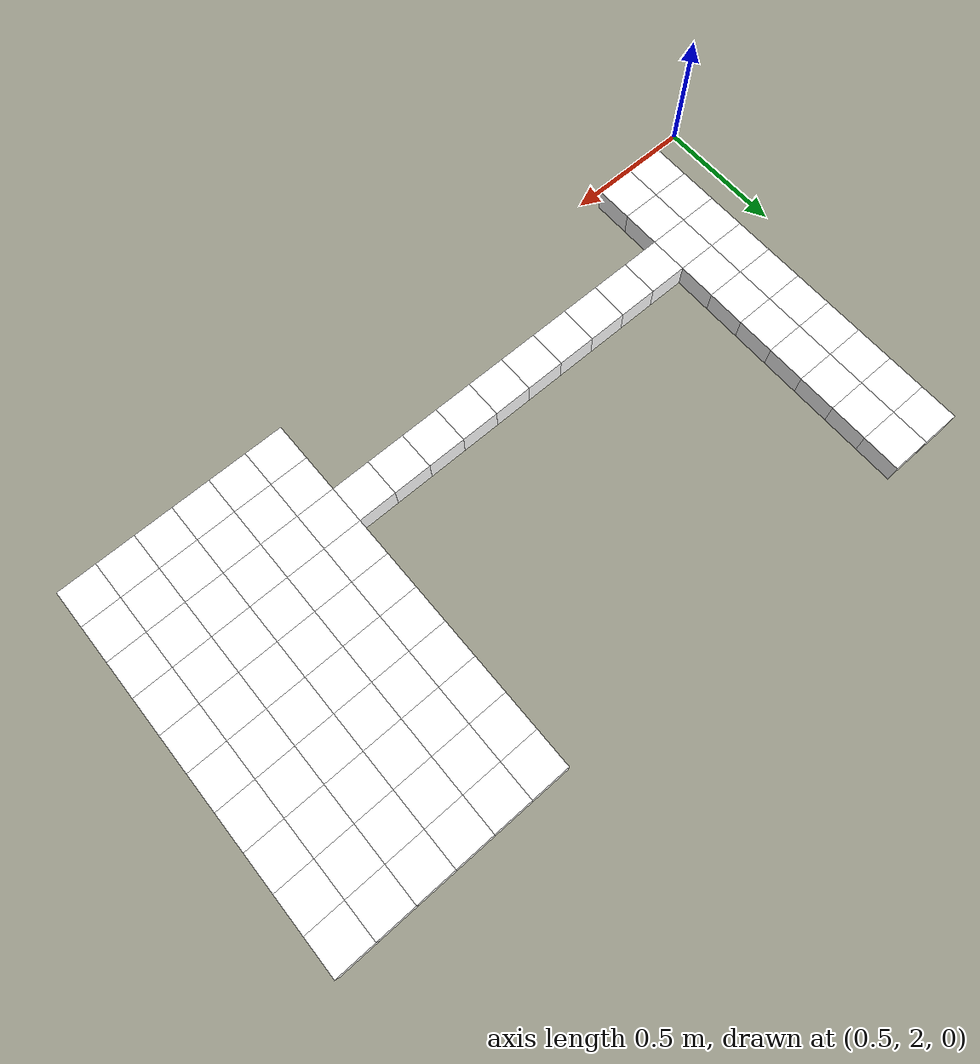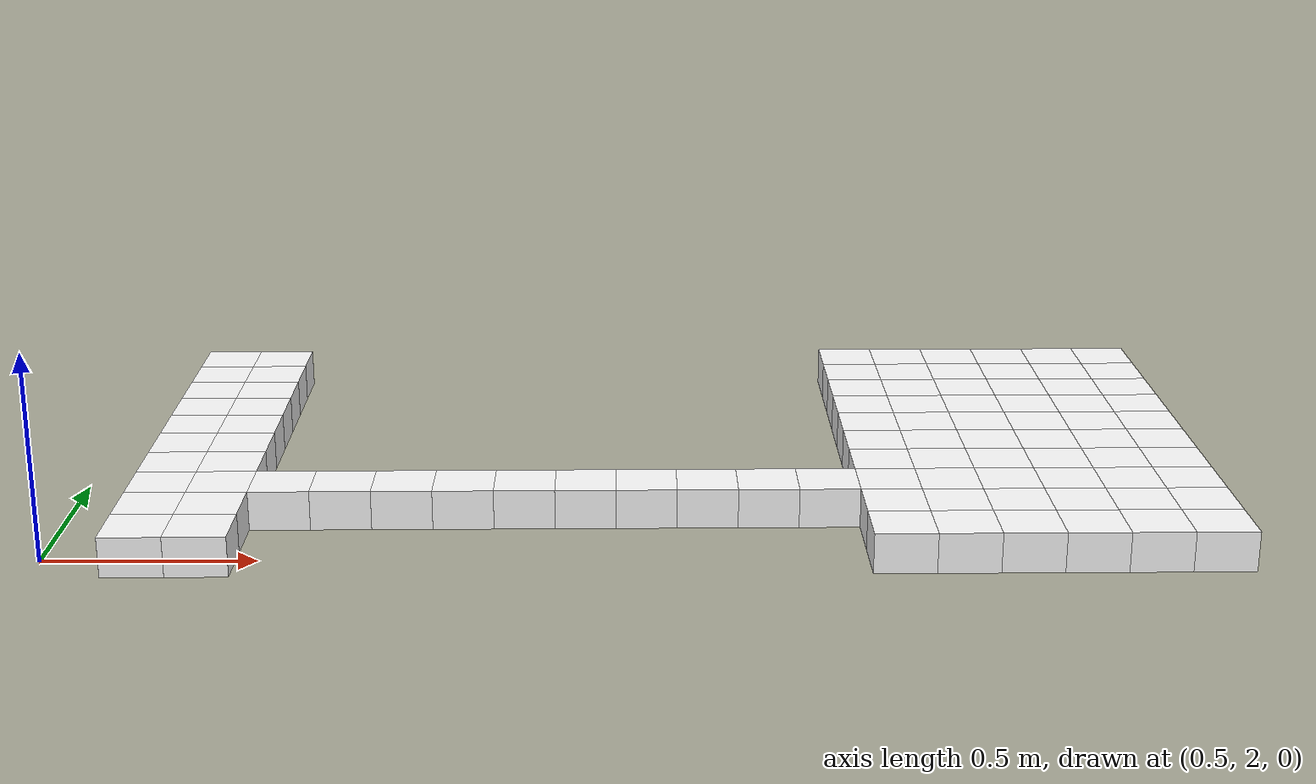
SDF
<sdf version="1.7">
 <world name="default">
  <include><uri>model://sun</uri></include>
  <model name="static_environment">
   <static>true</static>
   <link name="region_218">
    <pose>0.6999999999999993 2.0999999999999996 0.0 0.0 0.0 0.0</pose>
    <collision name="region_218_collision">
     <geometry><box><size>0.15 0.15 0.1</size></box></geometry>
     <surface><friction><ode><mu>1.0</mu><mu2>1.0</mu2></ode></friction></surface>
    </collision>
    <visual name="region_218_visual">
     <geometry><box><size>0.15 0.15 0.1</size></box></geometry>
     <material><ambient>1.0 1.0 1.0 1.0</ambient><diffuse>1.0 1.0 1.0 1.0</diffuse></material>
    </visual>
   </link>
   <link name="region_219">
    <pose>0.8499999999999992 2.0999999999999996 0.0 0.0 0.0 0.0</pose>
    <collision name="region_219_collision">
     <geometry><box><size>0.15 0.15 0.1</size></box></geometry>
     <surface><friction><ode><mu>1.0</mu><mu2>1.0</mu2></ode></friction></surface>
    </collision>
    <visual name="region_219_visual">
     <geometry><box><size>0.15 0.15 0.1</size></box></geometry>
     <material><ambient>1.0 1.0 1.0 1.0</ambient><diffuse>1.0 1.0 1.0 1.0</diffuse></material>
    </visual>
   </link>
   <link name="region_238">
    <pose>0.6999999999999993 2.2499999999999996 0.0 0.0 0.0 0.0</pose>
    <collision name="region_238_collision">
     <geometry><box><size>0.15 0.15 0.1</size></box></geometry>
     <surface><friction><ode><mu>1.0</mu><mu2>1.0</mu2></ode></friction></surface>
    </collision>
    <visual name="region_238_visual">
     <geometry><box><size>0.15 0.15 0.1</size></box></geometry>
     <material><ambient>1.0 1.0 1.0 1.0</ambient><diffuse>1.0 1.0 1.0 1.0</diffuse></material>
    </visual>
   </link>
   <link name="region_239">
    <pose>0.8499999999999992 2.2499999999999996 0.0 0.0 0.0 0.0</pose>
    <collision name="region_239_collision">
     <geometry><box><size>0.15 0.15 0.1</size></box></geometry>
     <surface><friction><ode><mu>1.0</mu><mu2>1.0</mu2></ode></friction></surface>
    </collision>
    <visual name="region_239_visual">
     <geometry><box><size>0.15 0.15 0.1</size></box></geometry>
     <material><ambient>1.0 1.0 1.0 1.0</ambient><diffuse>1.0 1.0 1.0 1.0</diffuse></material>
    </visual>
   </link>
   <link name="region_258">
    <pose>0.6999999999999993 2.3999999999999995 0.0 0.0 0.0 0.0</pose>
    <collision name="region_258_collision">
     <geometry><box><size>0.15 0.15 0.1</size></box></geometry>
     <surface><friction><ode><mu>1.0</mu><mu2>1.0</mu2></ode></friction></surface>
    </collision>
    <visual name="region_258_visual">
     <geometry><box><size>0.15 0.15 0.1</size></box></geometry>
     <material><ambient>1.0 1.0 1.0 1.0</ambient><diffuse>1.0 1.0 1.0 1.0</diffuse></material>
    </visual>
   </link>
   <link name="region_259">
    <pose>0.8499999999999992 2.3999999999999995 0.0 0.0 0.0 0.0</pose>
    <collision name="region_259_collision">
     <geometry><box><size>0.15 0.15 0.1</size></box></geometry>
     <surface><friction><ode><mu>1.0</mu><mu2>1.0</mu2></ode></friction></surface>
    </collision>
    <visual name="region_259_visual">
     <geometry><box><size>0.15 0.15 0.1</size></box></geometry>
     <material><ambient>1.0 1.0 1.0 1.0</ambient><diffuse>1.0 1.0 1.0 1.0</diffuse></material>
    </visual>
   </link>
   <link name="region_278">
    <pose>0.6999999999999993 2.5499999999999994 0.0 0.0 0.0 0.0</pose>
    <collision name="region_278_collision">
     <geometry><box><size>0.15 0.15 0.1</size></box></geometry>
     <surface><friction><ode><mu>1.0</mu><mu2>1.0</mu2></ode></friction></surface>
    </collision>
    <visual name="region_278_visual">
     <geometry><box><size>0.15 0.15 0.1</size></box></geometry>
     <material><ambient>1.0 1.0 1.0 1.0</ambient><diffuse>1.0 1.0 1.0 1.0</diffuse></material>
    </visual>
   </link>
   <link name="region_279">
    <pose>0.8499999999999992 2.5499999999999994 0.0 0.0 0.0 0.0</pose>
    <collision name="region_279_collision">
     <geometry><box><size>0.15 0.15 0.1</size></box></geometry>
     <surface><friction><ode><mu>1.0</mu><mu2>1.0</mu2></ode></friction></surface>
    </collision>
    <visual name="region_279_visual">
     <geometry><box><size>0.15 0.15 0.1</size></box></geometry>
     <material><ambient>1.0 1.0 1.0 1.0</ambient><diffuse>1.0 1.0 1.0 1.0</diffuse></material>
    </visual>
   </link>
   <link name="region_298">
    <pose>0.6999999999999993 2.6999999999999997 0.0 0.0 0.0 0.0</pose>
    <collision name="region_298_collision">
     <geometry><box><size>0.15 0.15 0.1</size></box></geometry>
     <surface><friction><ode><mu>1.0</mu><mu2>1.0</mu2></ode></friction></surface>
    </collision>
    <visual name="region_298_visual">
     <geometry><box><size>0.15 0.15 0.1</size></box></geometry>
     <material><ambient>1.0 1.0 1.0 1.0</ambient><diffuse>1.0 1.0 1.0 1.0</diffuse></material>
    </visual>
   </link>
   <link name="region_299">
    <pose>0.8499999999999992 2.6999999999999997 0.0 0.0 0.0 0.0</pose>
    <collision name="region_299_collision">
     <geometry><box><size>0.15 0.15 0.1</size></box></geometry>
     <surface><friction><ode><mu>1.0</mu><mu2>1.0</mu2></ode></friction></surface>
    </collision>
    <visual name="region_299_visual">
     <geometry><box><size>0.15 0.15 0.1</size></box></geometry>
     <material><ambient>1.0 1.0 1.0 1.0</ambient><diffuse>1.0 1.0 1.0 1.0</diffuse></material>
    </visual>
   </link>
   <link name="region_318">
    <pose>0.6999999999999993 2.8499999999999996 0.0 0.0 0.0 0.0</pose>
    <collision name="region_318_collision">
     <geometry><box><size>0.15 0.15 0.1</size></box></geometry>
     <surface><friction><ode><mu>1.0</mu><mu2>1.0</mu2></ode></friction></surface>
    </collision>
    <visual name="region_318_visual">
     <geometry><box><size>0.15 0.15 0.1</size></box></geometry>
     <material><ambient>1.0 1.0 1.0 1.0</ambient><diffuse>1.0 1.0 1.0 1.0</diffuse></material>
    </visual>
   </link>
   <link name="region_319">
    <pose>0.8499999999999992 2.8499999999999996 0.0 0.0 0.0 0.0</pose>
    <collision name="region_319_collision">
     <geometry><box><size>0.15 0.15 0.1</size></box></geometry>
     <surface><friction><ode><mu>1.0</mu><mu2>1.0</mu2></ode></friction></surface>
    </collision>
    <visual name="region_319_visual">
     <geometry><box><size>0.15 0.15 0.1</size></box></geometry>
     <material><ambient>1.0 1.0 1.0 1.0</ambient><diffuse>1.0 1.0 1.0 1.0</diffuse></material>
    </visual>
   </link>
   <link name="region_338">
    <pose>0.6999999999999993 2.9999999999999996 0.0 0.0 0.0 0.0</pose>
    <collision name="region_338_collision">
     <geometry><box><size>0.15 0.15 0.1</size></box></geometry>
     <surface><friction><ode><mu>1.0</mu><mu2>1.0</mu2></ode></friction></surface>
    </collision>
    <visual name="region_338_visual">
     <geometry><box><size>0.15 0.15 0.1</size></box></geometry>
     <material><ambient>1.0 1.0 1.0 1.0</ambient><diffuse>1.0 1.0 1.0 1.0</diffuse></material>
    </visual>
   </link>
   <link name="region_339">
    <pose>0.8499999999999992 2.9999999999999996 0.0 0.0 0.0 0.0</pose>
    <collision name="region_339_collision">
     <geometry><box><size>0.15 0.15 0.1</size></box></geometry>
     <surface><friction><ode><mu>1.0</mu><mu2>1.0</mu2></ode></friction></surface>
    </collision>
    <visual name="region_339_visual">
     <geometry><box><size>0.15 0.15 0.1</size></box></geometry>
     <material><ambient>1.0 1.0 1.0 1.0</ambient><diffuse>1.0 1.0 1.0 1.0</diffuse></material>
    </visual>
   </link>
   <link name="region_358">
    <pose>0.6999999999999993 3.1499999999999995 0.0 0.0 0.0 0.0</pose>
    <collision name="region_358_collision">
     <geometry><box><size>0.15 0.15 0.1</size></box></geometry>
     <surface><friction><ode><mu>1.0</mu><mu2>1.0</mu2></ode></friction></surface>
    </collision>
    <visual name="region_358_visual">
     <geometry><box><size>0.15 0.15 0.1</size></box></geometry>
     <material><ambient>1.0 1.0 1.0 1.0</ambient><diffuse>1.0 1.0 1.0 1.0</diffuse></material>
    </visual>
   </link>
   <link name="region_359">
    <pose>0.8499999999999992 3.1499999999999995 0.0 0.0 0.0 0.0</pose>
    <collision name="region_359_collision">
     <geometry><box><size>0.15 0.15 0.1</size></box></geometry>
     <surface><friction><ode><mu>1.0</mu><mu2>1.0</mu2></ode></friction></surface>
    </collision>
    <visual name="region_359_visual">
     <geometry><box><size>0.15 0.15 0.1</size></box></geometry>
     <material><ambient>1.0 1.0 1.0 1.0</ambient><diffuse>1.0 1.0 1.0 1.0</diffuse></material>
    </visual>
   </link>
   <link name="region_378">
    <pose>0.6999999999999993 3.2999999999999994 0.0 0.0 0.0 0.0</pose>
    <collision name="region_378_collision">
     <geometry><box><size>0.15 0.15 0.1</size></box></geometry>
     <surface><friction><ode><mu>1.0</mu><mu2>1.0</mu2></ode></friction></surface>
    </collision>
    <visual name="region_378_visual">
     <geometry><box><size>0.15 0.15 0.1</size></box></geometry>
     <material><ambient>1.0 1.0 1.0 1.0</ambient><diffuse>1.0 1.0 1.0 1.0</diffuse></material>
    </visual>
   </link>
   <link name="region_379">
    <pose>0.8499999999999992 3.2999999999999994 0.0 0.0 0.0 0.0</pose>
    <collision name="region_379_collision">
     <geometry><box><size>0.15 0.15 0.1</size></box></geometry>
     <surface><friction><ode><mu>1.0</mu><mu2>1.0</mu2></ode></friction></surface>
    </collision>
    <visual name="region_379_visual">
     <geometry><box><size>0.15 0.15 0.1</size></box></geometry>
     <material><ambient>1.0 1.0 1.0 1.0</ambient><diffuse>1.0 1.0 1.0 1.0</diffuse></material>
    </visual>
   </link>
   <link name="region_398">
    <pose>0.6999999999999993 3.4499999999999993 0.0 0.0 0.0 0.0</pose>
    <collision name="region_398_collision">
     <geometry><box><size>0.15 0.15 0.1</size></box></geometry>
     <surface><friction><ode><mu>1.0</mu><mu2>1.0</mu2></ode></friction></surface>
    </collision>
    <visual name="region_398_visual">
     <geometry><box><size>0.15 0.15 0.1</size></box></geometry>
     <material><ambient>1.0 1.0 1.0 1.0</ambient><diffuse>1.0 1.0 1.0 1.0</diffuse></material>
    </visual>
   </link>
   <link name="region_399">
    <pose>0.8499999999999992 3.4499999999999993 0.0 0.0 0.0 0.0</pose>
    <collision name="region_399_collision">
     <geometry><box><size>0.15 0.15 0.1</size></box></geometry>
     <surface><friction><ode><mu>1.0</mu><mu2>1.0</mu2></ode></friction></surface>
    </collision>
    <visual name="region_399_visual">
     <geometry><box><size>0.15 0.15 0.1</size></box></geometry>
     <material><ambient>1.0 1.0 1.0 1.0</ambient><diffuse>1.0 1.0 1.0 1.0</diffuse></material>
    </visual>
   </link>
   <link name="region_410">
    <pose>1.0 2.3999999999999995 0.0 0.0 0.0 0.0</pose>
    <collision name="region_410_collision">
     <geometry><box><size>0.15 0.15 0.1</size></box></geometry>
     <surface><friction><ode><mu>1.0</mu><mu2>1.0</mu2></ode></friction></surface>
    </collision>
    <visual name="region_410_visual">
     <geometry><box><size>0.15 0.15 0.1</size></box></geometry>
     <material><ambient>1.0 1.0 1.0 1.0</ambient><diffuse>1.0 1.0 1.0 1.0</diffuse></material>
    </visual>
   </link>
   <link name="region_411">
    <pose>1.15 2.3999999999999995 0.0 0.0 0.0 0.0</pose>
    <collision name="region_411_collision">
     <geometry><box><size>0.15 0.15 0.1</size></box></geometry>
     <surface><friction><ode><mu>1.0</mu><mu2>1.0</mu2></ode></friction></surface>
    </collision>
    <visual name="region_411_visual">
     <geometry><box><size>0.15 0.15 0.1</size></box></geometry>
     <material><ambient>1.0 1.0 1.0 1.0</ambient><diffuse>1.0 1.0 1.0 1.0</diffuse></material>
    </visual>
   </link>
   <link name="region_412">
    <pose>1.2999999999999998 2.3999999999999995 0.0 0.0 0.0 0.0</pose>
    <collision name="region_412_collision">
     <geometry><box><size>0.15 0.15 0.1</size></box></geometry>
     <surface><friction><ode><mu>1.0</mu><mu2>1.0</mu2></ode></friction></surface>
    </collision>
    <visual name="region_412_visual">
     <geometry><box><size>0.15 0.15 0.1</size></box></geometry>
     <material><ambient>1.0 1.0 1.0 1.0</ambient><diffuse>1.0 1.0 1.0 1.0</diffuse></material>
    </visual>
   </link>
   <link name="region_413">
    <pose>1.4499999999999997 2.3999999999999995 0.0 0.0 0.0 0.0</pose>
    <collision name="region_413_collision">
     <geometry><box><size>0.15 0.15 0.1</size></box></geometry>
     <surface><friction><ode><mu>1.0</mu><mu2>1.0</mu2></ode></friction></surface>
    </collision>
    <visual name="region_413_visual">
     <geometry><box><size>0.15 0.15 0.1</size></box></geometry>
     <material><ambient>1.0 1.0 1.0 1.0</ambient><diffuse>1.0 1.0 1.0 1.0</diffuse></material>
    </visual>
   </link>
   <link name="region_414">
    <pose>1.5999999999999996 2.3999999999999995 0.0 0.0 0.0 0.0</pose>
    <collision name="region_414_collision">
     <geometry><box><size>0.15 0.15 0.1</size></box></geometry>
     <surface><friction><ode><mu>1.0</mu><mu2>1.0</mu2></ode></friction></surface>
    </collision>
    <visual name="region_414_visual">
     <geometry><box><size>0.15 0.15 0.1</size></box></geometry>
     <material><ambient>1.0 1.0 1.0 1.0</ambient><diffuse>1.0 1.0 1.0 1.0</diffuse></material>
    </visual>
   </link>
   <link name="region_415">
    <pose>1.7499999999999996 2.3999999999999995 0.0 0.0 0.0 0.0</pose>
    <collision name="region_415_collision">
     <geometry><box><size>0.15 0.15 0.1</size></box></geometry>
     <surface><friction><ode><mu>1.0</mu><mu2>1.0</mu2></ode></friction></surface>
    </collision>
    <visual name="region_415_visual">
     <geometry><box><size>0.15 0.15 0.1</size></box></geometry>
     <material><ambient>1.0 1.0 1.0 1.0</ambient><diffuse>1.0 1.0 1.0 1.0</diffuse></material>
    </visual>
   </link>
   <link name="region_416">
    <pose>1.8999999999999995 2.3999999999999995 0.0 0.0 0.0 0.0</pose>
    <collision name="region_416_collision">
     <geometry><box><size>0.15 0.15 0.1</size></box></geometry>
     <surface><friction><ode><mu>1.0</mu><mu2>1.0</mu2></ode></friction></surface>
    </collision>
    <visual name="region_416_visual">
     <geometry><box><size>0.15 0.15 0.1</size></box></geometry>
     <material><ambient>1.0 1.0 1.0 1.0</ambient><diffuse>1.0 1.0 1.0 1.0</diffuse></material>
    </visual>
   </link>
   <link name="region_417">
    <pose>2.05 2.3999999999999995 0.0 0.0 0.0 0.0</pose>
    <collision name="region_417_collision">
     <geometry><box><size>0.15 0.15 0.1</size></box></geometry>
     <surface><friction><ode><mu>1.0</mu><mu2>1.0</mu2></ode></friction></surface>
    </collision>
    <visual name="region_417_visual">
     <geometry><box><size>0.15 0.15 0.1</size></box></geometry>
     <material><ambient>1.0 1.0 1.0 1.0</ambient><diffuse>1.0 1.0 1.0 1.0</diffuse></material>
    </visual>
   </link>
   <link name="region_418">
    <pose>2.2 2.3999999999999995 0.0 0.0 0.0 0.0</pose>
    <collision name="region_418_collision">
     <geometry><box><size>0.15 0.15 0.1</size></box></geometry>
     <surface><friction><ode><mu>1.0</mu><mu2>1.0</mu2></ode></friction></surface>
    </collision>
    <visual name="region_418_visual">
     <geometry><box><size>0.15 0.15 0.1</size></box></geometry>
     <material><ambient>1.0 1.0 1.0 1.0</ambient><diffuse>1.0 1.0 1.0 1.0</diffuse></material>
    </visual>
   </link>
   <link name="region_419">
    <pose>2.3500000000000005 2.3999999999999995 0.0 0.0 0.0 0.0</pose>
    <collision name="region_419_collision">
     <geometry><box><size>0.15 0.15 0.1</size></box></geometry>
     <surface><friction><ode><mu>1.0</mu><mu2>1.0</mu2></ode></friction></surface>
    </collision>
    <visual name="region_419_visual">
     <geometry><box><size>0.15 0.15 0.1</size></box></geometry>
     <material><ambient>1.0 1.0 1.0 1.0</ambient><diffuse>1.0 1.0 1.0 1.0</diffuse></material>
    </visual>
   </link>
   <link name="region_620">
    <pose>2.5 2.0999999999999996 0.0 0.0 0.0 0.0</pose>
    <collision name="region_620_collision">
     <geometry><box><size>0.15 0.15 0.1</size></box></geometry>
     <surface><friction><ode><mu>1.0</mu><mu2>1.0</mu2></ode></friction></surface>
    </collision>
    <visual name="region_620_visual">
     <geometry><box><size>0.15 0.15 0.1</size></box></geometry>
     <material><ambient>1.0 1.0 1.0 1.0</ambient><diffuse>1.0 1.0 1.0 1.0</diffuse></material>
    </visual>
   </link>
   <link name="region_621">
    <pose>2.6500000000000004 2.0999999999999996 0.0 0.0 0.0 0.0</pose>
    <collision name="region_621_collision">
     <geometry><box><size>0.15 0.15 0.1</size></box></geometry>
     <surface><friction><ode><mu>1.0</mu><mu2>1.0</mu2></ode></friction></surface>
    </collision>
    <visual name="region_621_visual">
     <geometry><box><size>0.15 0.15 0.1</size></box></geometry>
     <material><ambient>1.0 1.0 1.0 1.0</ambient><diffuse>1.0 1.0 1.0 1.0</diffuse></material>
    </visual>
   </link>
   <link name="region_622">
    <pose>2.8000000000000007 2.0999999999999996 0.0 0.0 0.0 0.0</pose>
    <collision name="region_622_collision">
     <geometry><box><size>0.15 0.15 0.1</size></box></geometry>
     <surface><friction><ode><mu>1.0</mu><mu2>1.0</mu2></ode></friction></surface>
    </collision>
    <visual name="region_622_visual">
     <geometry><box><size>0.15 0.15 0.1</size></box></geometry>
     <material><ambient>1.0 1.0 1.0 1.0</ambient><diffuse>1.0 1.0 1.0 1.0</diffuse></material>
    </visual>
   </link>
   <link name="region_623">
    <pose>2.950000000000001 2.0999999999999996 0.0 0.0 0.0 0.0</pose>
    <collision name="region_623_collision">
     <geometry><box><size>0.15 0.15 0.1</size></box></geometry>
     <surface><friction><ode><mu>1.0</mu><mu2>1.0</mu2></ode></friction></surface>
    </collision>
    <visual name="region_623_visual">
     <geometry><box><size>0.15 0.15 0.1</size></box></geometry>
     <material><ambient>1.0 1.0 1.0 1.0</ambient><diffuse>1.0 1.0 1.0 1.0</diffuse></material>
    </visual>
   </link>
   <link name="region_624">
    <pose>3.1000000000000014 2.0999999999999996 0.0 0.0 0.0 0.0</pose>
    <collision name="region_624_collision">
     <geometry><box><size>0.15 0.15 0.1</size></box></geometry>
     <surface><friction><ode><mu>1.0</mu><mu2>1.0</mu2></ode></friction></surface>
    </collision>
    <visual name="region_624_visual">
     <geometry><box><size>0.15 0.15 0.1</size></box></geometry>
     <material><ambient>1.0 1.0 1.0 1.0</ambient><diffuse>1.0 1.0 1.0 1.0</diffuse></material>
    </visual>
   </link>
   <link name="region_625">
    <pose>3.2500000000000018 2.0999999999999996 0.0 0.0 0.0 0.0</pose>
    <collision name="region_625_collision">
     <geometry><box><size>0.15 0.15 0.1</size></box></geometry>
     <surface><friction><ode><mu>1.0</mu><mu2>1.0</mu2></ode></friction></surface>
    </collision>
    <visual name="region_625_visual">
     <geometry><box><size>0.15 0.15 0.1</size></box></geometry>
     <material><ambient>1.0 1.0 1.0 1.0</ambient><diffuse>1.0 1.0 1.0 1.0</diffuse></material>
    </visual>
   </link>
   <link name="region_640">
    <pose>2.5 2.2499999999999996 0.0 0.0 0.0 0.0</pose>
    <collision name="region_640_collision">
     <geometry><box><size>0.15 0.15 0.1</size></box></geometry>
     <surface><friction><ode><mu>1.0</mu><mu2>1.0</mu2></ode></friction></surface>
    </collision>
    <visual name="region_640_visual">
     <geometry><box><size>0.15 0.15 0.1</size></box></geometry>
     <material><ambient>1.0 1.0 1.0 1.0</ambient><diffuse>1.0 1.0 1.0 1.0</diffuse></material>
    </visual>
   </link>
   <link name="region_641">
    <pose>2.6500000000000004 2.2499999999999996 0.0 0.0 0.0 0.0</pose>
    <collision name="region_641_collision">
     <geometry><box><size>0.15 0.15 0.1</size></box></geometry>
     <surface><friction><ode><mu>1.0</mu><mu2>1.0</mu2></ode></friction></surface>
    </collision>
    <visual name="region_641_visual">
     <geometry><box><size>0.15 0.15 0.1</size></box></geometry>
     <material><ambient>1.0 1.0 1.0 1.0</ambient><diffuse>1.0 1.0 1.0 1.0</diffuse></material>
    </visual>
   </link>
   <link name="region_642">
    <pose>2.8000000000000007 2.2499999999999996 0.0 0.0 0.0 0.0</pose>
    <collision name="region_642_collision">
     <geometry><box><size>0.15 0.15 0.1</size></box></geometry>
     <surface><friction><ode><mu>1.0</mu><mu2>1.0</mu2></ode></friction></surface>
    </collision>
    <visual name="region_642_visual">
     <geometry><box><size>0.15 0.15 0.1</size></box></geometry>
     <material><ambient>1.0 1.0 1.0 1.0</ambient><diffuse>1.0 1.0 1.0 1.0</diffuse></material>
    </visual>
   </link>
   <link name="region_643">
    <pose>2.950000000000001 2.2499999999999996 0.0 0.0 0.0 0.0</pose>
    <collision name="region_643_collision">
     <geometry><box><size>0.15 0.15 0.1</size></box></geometry>
     <surface><friction><ode><mu>1.0</mu><mu2>1.0</mu2></ode></friction></surface>
    </collision>
    <visual name="region_643_visual">
     <geometry><box><size>0.15 0.15 0.1</size></box></geometry>
     <material><ambient>1.0 1.0 1.0 1.0</ambient><diffuse>1.0 1.0 1.0 1.0</diffuse></material>
    </visual>
   </link>
   <link name="region_644">
    <pose>3.1000000000000014 2.2499999999999996 0.0 0.0 0.0 0.0</pose>
    <collision name="region_644_collision">
     <geometry><box><size>0.15 0.15 0.1</size></box></geometry>
     <surface><friction><ode><mu>1.0</mu><mu2>1.0</mu2></ode></friction></surface>
    </collision>
    <visual name="region_644_visual">
     <geometry><box><size>0.15 0.15 0.1</size></box></geometry>
     <material><ambient>1.0 1.0 1.0 1.0</ambient><diffuse>1.0 1.0 1.0 1.0</diffuse></material>
    </visual>
   </link>
   <link name="region_645">
    <pose>3.2500000000000018 2.2499999999999996 0.0 0.0 0.0 0.0</pose>
    <collision name="region_645_collision">
     <geometry><box><size>0.15 0.15 0.1</size></box></geometry>
     <surface><friction><ode><mu>1.0</mu><mu2>1.0</mu2></ode></friction></surface>
    </collision>
    <visual name="region_645_visual">
     <geometry><box><size>0.15 0.15 0.1</size></box></geometry>
     <material><ambient>1.0 1.0 1.0 1.0</ambient><diffuse>1.0 1.0 1.0 1.0</diffuse></material>
    </visual>
   </link>
   <link name="region_660">
    <pose>2.5 2.3999999999999995 0.0 0.0 0.0 0.0</pose>
    <collision name="region_660_collision">
     <geometry><box><size>0.15 0.15 0.1</size></box></geometry>
     <surface><friction><ode><mu>1.0</mu><mu2>1.0</mu2></ode></friction></surface>
    </collision>
    <visual name="region_660_visual">
     <geometry><box><size>0.15 0.15 0.1</size></box></geometry>
     <material><ambient>1.0 1.0 1.0 1.0</ambient><diffuse>1.0 1.0 1.0 1.0</diffuse></material>
    </visual>
   </link>
   <link name="region_661">
    <pose>2.6500000000000004 2.3999999999999995 0.0 0.0 0.0 0.0</pose>
    <collision name="region_661_collision">
     <geometry><box><size>0.15 0.15 0.1</size></box></geometry>
     <surface><friction><ode><mu>1.0</mu><mu2>1.0</mu2></ode></friction></surface>
    </collision>
    <visual name="region_661_visual">
     <geometry><box><size>0.15 0.15 0.1</size></box></geometry>
     <material><ambient>1.0 1.0 1.0 1.0</ambient><diffuse>1.0 1.0 1.0 1.0</diffuse></material>
    </visual>
   </link>
   <link name="region_662">
    <pose>2.8000000000000007 2.3999999999999995 0.0 0.0 0.0 0.0</pose>
    <collision name="region_662_collision">
     <geometry><box><size>0.15 0.15 0.1</size></box></geometry>
     <surface><friction><ode><mu>1.0</mu><mu2>1.0</mu2></ode></friction></surface>
    </collision>
    <visual name="region_662_visual">
     <geometry><box><size>0.15 0.15 0.1</size></box></geometry>
     <material><ambient>1.0 1.0 1.0 1.0</ambient><diffuse>1.0 1.0 1.0 1.0</diffuse></material>
    </visual>
   </link>
   <link name="region_663">
    <pose>2.950000000000001 2.3999999999999995 0.0 0.0 0.0 0.0</pose>
    <collision name="region_663_collision">
     <geometry><box><size>0.15 0.15 0.1</size></box></geometry>
     <surface><friction><ode><mu>1.0</mu><mu2>1.0</mu2></ode></friction></surface>
    </collision>
    <visual name="region_663_visual">
     <geometry><box><size>0.15 0.15 0.1</size></box></geometry>
     <material><ambient>1.0 1.0 1.0 1.0</ambient><diffuse>1.0 1.0 1.0 1.0</diffuse></material>
    </visual>
   </link>
   <link name="region_664">
    <pose>3.1000000000000014 2.3999999999999995 0.0 0.0 0.0 0.0</pose>
    <collision name="region_664_collision">
     <geometry><box><size>0.15 0.15 0.1</size></box></geometry>
     <surface><friction><ode><mu>1.0</mu><mu2>1.0</mu2></ode></friction></surface>
    </collision>
    <visual name="region_664_visual">
     <geometry><box><size>0.15 0.15 0.1</size></box></geometry>
     <material><ambient>1.0 1.0 1.0 1.0</ambient><diffuse>1.0 1.0 1.0 1.0</diffuse></material>
    </visual>
   </link>
   <link name="region_665">
    <pose>3.2500000000000018 2.3999999999999995 0.0 0.0 0.0 0.0</pose>
    <collision name="region_665_collision">
     <geometry><box><size>0.15 0.15 0.1</size></box></geometry>
     <surface><friction><ode><mu>1.0</mu><mu2>1.0</mu2></ode></friction></surface>
    </collision>
    <visual name="region_665_visual">
     <geometry><box><size>0.15 0.15 0.1</size></box></geometry>
     <material><ambient>1.0 1.0 1.0 1.0</ambient><diffuse>1.0 1.0 1.0 1.0</diffuse></material>
    </visual>
   </link>
   <link name="region_680">
    <pose>2.5 2.5499999999999994 0.0 0.0 0.0 0.0</pose>
    <collision name="region_680_collision">
     <geometry><box><size>0.15 0.15 0.1</size></box></geometry>
     <surface><friction><ode><mu>1.0</mu><mu2>1.0</mu2></ode></friction></surface>
    </collision>
    <visual name="region_680_visual">
     <geometry><box><size>0.15 0.15 0.1</size></box></geometry>
     <material><ambient>1.0 1.0 1.0 1.0</ambient><diffuse>1.0 1.0 1.0 1.0</diffuse></material>
    </visual>
   </link>
   <link name="region_681">
    <pose>2.6500000000000004 2.5499999999999994 0.0 0.0 0.0 0.0</pose>
    <collision name="region_681_collision">
     <geometry><box><size>0.15 0.15 0.1</size></box></geometry>
     <surface><friction><ode><mu>1.0</mu><mu2>1.0</mu2></ode></friction></surface>
    </collision>
    <visual name="region_681_visual">
     <geometry><box><size>0.15 0.15 0.1</size></box></geometry>
     <material><ambient>1.0 1.0 1.0 1.0</ambient><diffuse>1.0 1.0 1.0 1.0</diffuse></material>
    </visual>
   </link>
   <link name="region_682">
    <pose>2.8000000000000007 2.5499999999999994 0.0 0.0 0.0 0.0</pose>
    <collision name="region_682_collision">
     <geometry><box><size>0.15 0.15 0.1</size></box></geometry>
     <surface><friction><ode><mu>1.0</mu><mu2>1.0</mu2></ode></friction></surface>
    </collision>
    <visual name="region_682_visual">
     <geometry><box><size>0.15 0.15 0.1</size></box></geometry>
     <material><ambient>1.0 1.0 1.0 1.0</ambient><diffuse>1.0 1.0 1.0 1.0</diffuse></material>
    </visual>
   </link>
   <link name="region_683">
    <pose>2.950000000000001 2.5499999999999994 0.0 0.0 0.0 0.0</pose>
    <collision name="region_683_collision">
     <geometry><box><size>0.15 0.15 0.1</size></box></geometry>
     <surface><friction><ode><mu>1.0</mu><mu2>1.0</mu2></ode></friction></surface>
    </collision>
    <visual name="region_683_visual">
     <geometry><box><size>0.15 0.15 0.1</size></box></geometry>
     <material><ambient>1.0 1.0 1.0 1.0</ambient><diffuse>1.0 1.0 1.0 1.0</diffuse></material>
    </visual>
   </link>
   <link name="region_684">
    <pose>3.1000000000000014 2.5499999999999994 0.0 0.0 0.0 0.0</pose>
    <collision name="region_684_collision">
     <geometry><box><size>0.15 0.15 0.1</size></box></geometry>
     <surface><friction><ode><mu>1.0</mu><mu2>1.0</mu2></ode></friction></surface>
    </collision>
    <visual name="region_684_visual">
     <geometry><box><size>0.15 0.15 0.1</size></box></geometry>
     <material><ambient>1.0 1.0 1.0 1.0</ambient><diffuse>1.0 1.0 1.0 1.0</diffuse></material>
    </visual>
   </link>
   <link name="region_685">
    <pose>3.2500000000000018 2.5499999999999994 0.0 0.0 0.0 0.0</pose>
    <collision name="region_685_collision">
     <geometry><box><size>0.15 0.15 0.1</size></box></geometry>
     <surface><friction><ode><mu>1.0</mu><mu2>1.0</mu2></ode></friction></surface>
    </collision>
    <visual name="region_685_visual">
     <geometry><box><size>0.15 0.15 0.1</size></box></geometry>
     <material><ambient>1.0 1.0 1.0 1.0</ambient><diffuse>1.0 1.0 1.0 1.0</diffuse></material>
    </visual>
   </link>
   <link name="region_700">
    <pose>2.5 2.6999999999999997 0.0 0.0 0.0 0.0</pose>
    <collision name="region_700_collision">
     <geometry><box><size>0.15 0.15 0.1</size></box></geometry>
     <surface><friction><ode><mu>1.0</mu><mu2>1.0</mu2></ode></friction></surface>
    </collision>
    <visual name="region_700_visual">
     <geometry><box><size>0.15 0.15 0.1</size></box></geometry>
     <material><ambient>1.0 1.0 1.0 1.0</ambient><diffuse>1.0 1.0 1.0 1.0</diffuse></material>
    </visual>
   </link>
   <link name="region_701">
    <pose>2.6500000000000004 2.6999999999999997 0.0 0.0 0.0 0.0</pose>
    <collision name="region_701_collision">
     <geometry><box><size>0.15 0.15 0.1</size></box></geometry>
     <surface><friction><ode><mu>1.0</mu><mu2>1.0</mu2></ode></friction></surface>
    </collision>
    <visual name="region_701_visual">
     <geometry><box><size>0.15 0.15 0.1</size></box></geometry>
     <material><ambient>1.0 1.0 1.0 1.0</ambient><diffuse>1.0 1.0 1.0 1.0</diffuse></material>
    </visual>
   </link>
   <link name="region_702">
    <pose>2.8000000000000007 2.6999999999999997 0.0 0.0 0.0 0.0</pose>
    <collision name="region_702_collision">
     <geometry><box><size>0.15 0.15 0.1</size></box></geometry>
     <surface><friction><ode><mu>1.0</mu><mu2>1.0</mu2></ode></friction></surface>
    </collision>
    <visual name="region_702_visual">
     <geometry><box><size>0.15 0.15 0.1</size></box></geometry>
     <material><ambient>1.0 1.0 1.0 1.0</ambient><diffuse>1.0 1.0 1.0 1.0</diffuse></material>
    </visual>
   </link>
   <link name="region_703">
    <pose>2.950000000000001 2.6999999999999997 0.0 0.0 0.0 0.0</pose>
    <collision name="region_703_collision">
     <geometry><box><size>0.15 0.15 0.1</size></box></geometry>
     <surface><friction><ode><mu>1.0</mu><mu2>1.0</mu2></ode></friction></surface>
    </collision>
    <visual name="region_703_visual">
     <geometry><box><size>0.15 0.15 0.1</size></box></geometry>
     <material><ambient>1.0 1.0 1.0 1.0</ambient><diffuse>1.0 1.0 1.0 1.0</diffuse></material>
    </visual>
   </link>
   <link name="region_704">
    <pose>3.1000000000000014 2.6999999999999997 0.0 0.0 0.0 0.0</pose>
    <collision name="region_704_collision">
     <geometry><box><size>0.15 0.15 0.1</size></box></geometry>
     <surface><friction><ode><mu>1.0</mu><mu2>1.0</mu2></ode></friction></surface>
    </collision>
    <visual name="region_704_visual">
     <geometry><box><size>0.15 0.15 0.1</size></box></geometry>
     <material><ambient>1.0 1.0 1.0 1.0</ambient><diffuse>1.0 1.0 1.0 1.0</diffuse></material>
    </visual>
   </link>
   <link name="region_705">
    <pose>3.2500000000000018 2.6999999999999997 0.0 0.0 0.0 0.0</pose>
    <collision name="region_705_collision">
     <geometry><box><size>0.15 0.15 0.1</size></box></geometry>
     <surface><friction><ode><mu>1.0</mu><mu2>1.0</mu2></ode></friction></surface>
    </collision>
    <visual name="region_705_visual">
     <geometry><box><size>0.15 0.15 0.1</size></box></geometry>
     <material><ambient>1.0 1.0 1.0 1.0</ambient><diffuse>1.0 1.0 1.0 1.0</diffuse></material>
    </visual>
   </link>
   <link name="region_720">
    <pose>2.5 2.8499999999999996 0.0 0.0 0.0 0.0</pose>
    <collision name="region_720_collision">
     <geometry><box><size>0.15 0.15 0.1</size></box></geometry>
     <surface><friction><ode><mu>1.0</mu><mu2>1.0</mu2></ode></friction></surface>
    </collision>
    <visual name="region_720_visual">
     <geometry><box><size>0.15 0.15 0.1</size></box></geometry>
     <material><ambient>1.0 1.0 1.0 1.0</ambient><diffuse>1.0 1.0 1.0 1.0</diffuse></material>
    </visual>
   </link>
   <link name="region_721">
    <pose>2.6500000000000004 2.8499999999999996 0.0 0.0 0.0 0.0</pose>
    <collision name="region_721_collision">
     <geometry><box><size>0.15 0.15 0.1</size></box></geometry>
     <surface><friction><ode><mu>1.0</mu><mu2>1.0</mu2></ode></friction></surface>
    </collision>
    <visual name="region_721_visual">
     <geometry><box><size>0.15 0.15 0.1</size></box></geometry>
     <material><ambient>1.0 1.0 1.0 1.0</ambient><diffuse>1.0 1.0 1.0 1.0</diffuse></material>
    </visual>
   </link>
   <link name="region_722">
    <pose>2.8000000000000007 2.8499999999999996 0.0 0.0 0.0 0.0</pose>
    <collision name="region_722_collision">
     <geometry><box><size>0.15 0.15 0.1</size></box></geometry>
     <surface><friction><ode><mu>1.0</mu><mu2>1.0</mu2></ode></friction></surface>
    </collision>
    <visual name="region_722_visual">
     <geometry><box><size>0.15 0.15 0.1</size></box></geometry>
     <material><ambient>1.0 1.0 1.0 1.0</ambient><diffuse>1.0 1.0 1.0 1.0</diffuse></material>
    </visual>
   </link>
   <link name="region_723">
    <pose>2.950000000000001 2.8499999999999996 0.0 0.0 0.0 0.0</pose>
    <collision name="region_723_collision">
     <geometry><box><size>0.15 0.15 0.1</size></box></geometry>
     <surface><friction><ode><mu>1.0</mu><mu2>1.0</mu2></ode></friction></surface>
    </collision>
    <visual name="region_723_visual">
     <geometry><box><size>0.15 0.15 0.1</size></box></geometry>
     <material><ambient>1.0 1.0 1.0 1.0</ambient><diffuse>1.0 1.0 1.0 1.0</diffuse></material>
    </visual>
   </link>
   <link name="region_724">
    <pose>3.1000000000000014 2.8499999999999996 0.0 0.0 0.0 0.0</pose>
    <collision name="region_724_collision">
     <geometry><box><size>0.15 0.15 0.1</size></box></geometry>
     <surface><friction><ode><mu>1.0</mu><mu2>1.0</mu2></ode></friction></surface>
    </collision>
    <visual name="region_724_visual">
     <geometry><box><size>0.15 0.15 0.1</size></box></geometry>
     <material><ambient>1.0 1.0 1.0 1.0</ambient><diffuse>1.0 1.0 1.0 1.0</diffuse></material>
    </visual>
   </link>
   <link name="region_725">
    <pose>3.2500000000000018 2.8499999999999996 0.0 0.0 0.0 0.0</pose>
    <collision name="region_725_collision">
     <geometry><box><size>0.15 0.15 0.1</size></box></geometry>
     <surface><friction><ode><mu>1.0</mu><mu2>1.0</mu2></ode></friction></surface>
    </collision>
    <visual name="region_725_visual">
     <geometry><box><size>0.15 0.15 0.1</size></box></geometry>
     <material><ambient>1.0 1.0 1.0 1.0</ambient><diffuse>1.0 1.0 1.0 1.0</diffuse></material>
    </visual>
   </link>
   <link name="region_740">
    <pose>2.5 2.9999999999999996 0.0 0.0 0.0 0.0</pose>
    <collision name="region_740_collision">
     <geometry><box><size>0.15 0.15 0.1</size></box></geometry>
     <surface><friction><ode><mu>1.0</mu><mu2>1.0</mu2></ode></friction></surface>
    </collision>
    <visual name="region_740_visual">
     <geometry><box><size>0.15 0.15 0.1</size></box></geometry>
     <material><ambient>1.0 1.0 1.0 1.0</ambient><diffuse>1.0 1.0 1.0 1.0</diffuse></material>
    </visual>
   </link>
   <link name="region_741">
    <pose>2.6500000000000004 2.9999999999999996 0.0 0.0 0.0 0.0</pose>
    <collision name="region_741_collision">
     <geometry><box><size>0.15 0.15 0.1</size></box></geometry>
     <surface><friction><ode><mu>1.0</mu><mu2>1.0</mu2></ode></friction></surface>
    </collision>
    <visual name="region_741_visual">
     <geometry><box><size>0.15 0.15 0.1</size></box></geometry>
     <material><ambient>1.0 1.0 1.0 1.0</ambient><diffuse>1.0 1.0 1.0 1.0</diffuse></material>
    </visual>
   </link>
   <link name="region_742">
    <pose>2.8000000000000007 2.9999999999999996 0.0 0.0 0.0 0.0</pose>
    <collision name="region_742_collision">
     <geometry><box><size>0.15 0.15 0.1</size></box></geometry>
     <surface><friction><ode><mu>1.0</mu><mu2>1.0</mu2></ode></friction></surface>
    </collision>
    <visual name="region_742_visual">
     <geometry><box><size>0.15 0.15 0.1</size></box></geometry>
     <material><ambient>1.0 1.0 1.0 1.0</ambient><diffuse>1.0 1.0 1.0 1.0</diffuse></material>
    </visual>
   </link>
   <link name="region_743">
    <pose>2.950000000000001 2.9999999999999996 0.0 0.0 0.0 0.0</pose>
    <collision name="region_743_collision">
     <geometry><box><size>0.15 0.15 0.1</size></box></geometry>
     <surface><friction><ode><mu>1.0</mu><mu2>1.0</mu2></ode></friction></surface>
    </collision>
    <visual name="region_743_visual">
     <geometry><box><size>0.15 0.15 0.1</size></box></geometry>
     <material><ambient>1.0 1.0 1.0 1.0</ambient><diffuse>1.0 1.0 1.0 1.0</diffuse></material>
    </visual>
   </link>
   <link name="region_744">
    <pose>3.1000000000000014 2.9999999999999996 0.0 0.0 0.0 0.0</pose>
    <collision name="region_744_collision">
     <geometry><box><size>0.15 0.15 0.1</size></box></geometry>
     <surface><friction><ode><mu>1.0</mu><mu2>1.0</mu2></ode></friction></surface>
    </collision>
    <visual name="region_744_visual">
     <geometry><box><size>0.15 0.15 0.1</size></box></geometry>
     <material><ambient>1.0 1.0 1.0 1.0</ambient><diffuse>1.0 1.0 1.0 1.0</diffuse></material>
    </visual>
   </link>
   <link name="region_745">
    <pose>3.2500000000000018 2.9999999999999996 0.0 0.0 0.0 0.0</pose>
    <collision name="region_745_collision">
     <geometry><box><size>0.15 0.15 0.1</size></box></geometry>
     <surface><friction><ode><mu>1.0</mu><mu2>1.0</mu2></ode></friction></surface>
    </collision>
    <visual name="region_745_visual">
     <geometry><box><size>0.15 0.15 0.1</size></box></geometry>
     <material><ambient>1.0 1.0 1.0 1.0</ambient><diffuse>1.0 1.0 1.0 1.0</diffuse></material>
    </visual>
   </link>
   <link name="region_760">
    <pose>2.5 3.1499999999999995 0.0 0.0 0.0 0.0</pose>
    <collision name="region_760_collision">
     <geometry><box><size>0.15 0.15 0.1</size></box></geometry>
     <surface><friction><ode><mu>1.0</mu><mu2>1.0</mu2></ode></friction></surface>
    </collision>
    <visual name="region_760_visual">
     <geometry><box><size>0.15 0.15 0.1</size></box></geometry>
     <material><ambient>1.0 1.0 1.0 1.0</ambient><diffuse>1.0 1.0 1.0 1.0</diffuse></material>
    </visual>
   </link>
   <link name="region_761">
    <pose>2.6500000000000004 3.1499999999999995 0.0 0.0 0.0 0.0</pose>
    <collision name="region_761_collision">
     <geometry><box><size>0.15 0.15 0.1</size></box></geometry>
     <surface><friction><ode><mu>1.0</mu><mu2>1.0</mu2></ode></friction></surface>
    </collision>
    <visual name="region_761_visual">
     <geometry><box><size>0.15 0.15 0.1</size></box></geometry>
     <material><ambient>1.0 1.0 1.0 1.0</ambient><diffuse>1.0 1.0 1.0 1.0</diffuse></material>
    </visual>
   </link>
   <link name="region_762">
    <pose>2.8000000000000007 3.1499999999999995 0.0 0.0 0.0 0.0</pose>
    <collision name="region_762_collision">
     <geometry><box><size>0.15 0.15 0.1</size></box></geometry>
     <surface><friction><ode><mu>1.0</mu><mu2>1.0</mu2></ode></friction></surface>
    </collision>
    <visual name="region_762_visual">
     <geometry><box><size>0.15 0.15 0.1</size></box></geometry>
     <material><ambient>1.0 1.0 1.0 1.0</ambient><diffuse>1.0 1.0 1.0 1.0</diffuse></material>
    </visual>
   </link>
   <link name="region_763">
    <pose>2.950000000000001 3.1499999999999995 0.0 0.0 0.0 0.0</pose>
    <collision name="region_763_collision">
     <geometry><box><size>0.15 0.15 0.1</size></box></geometry>
     <surface><friction><ode><mu>1.0</mu><mu2>1.0</mu2></ode></friction></surface>
    </collision>
    <visual name="region_763_visual">
     <geometry><box><size>0.15 0.15 0.1</size></box></geometry>
     <material><ambient>1.0 1.0 1.0 1.0</ambient><diffuse>1.0 1.0 1.0 1.0</diffuse></material>
    </visual>
   </link>
   <link name="region_764">
    <pose>3.1000000000000014 3.1499999999999995 0.0 0.0 0.0 0.0</pose>
    <collision name="region_764_collision">
     <geometry><box><size>0.15 0.15 0.1</size></box></geometry>
     <surface><friction><ode><mu>1.0</mu><mu2>1.0</mu2></ode></friction></surface>
    </collision>
    <visual name="region_764_visual">
     <geometry><box><size>0.15 0.15 0.1</size></box></geometry>
     <material><ambient>1.0 1.0 1.0 1.0</ambient><diffuse>1.0 1.0 1.0 1.0</diffuse></material>
    </visual>
   </link>
   <link name="region_765">
    <pose>3.2500000000000018 3.1499999999999995 0.0 0.0 0.0 0.0</pose>
    <collision name="region_765_collision">
     <geometry><box><size>0.15 0.15 0.1</size></box></geometry>
     <surface><friction><ode><mu>1.0</mu><mu2>1.0</mu2></ode></friction></surface>
    </collision>
    <visual name="region_765_visual">
     <geometry><box><size>0.15 0.15 0.1</size></box></geometry>
     <material><ambient>1.0 1.0 1.0 1.0</ambient><diffuse>1.0 1.0 1.0 1.0</diffuse></material>
    </visual>
   </link>
   <link name="region_780">
    <pose>2.5 3.2999999999999994 0.0 0.0 0.0 0.0</pose>
    <collision name="region_780_collision">
     <geometry><box><size>0.15 0.15 0.1</size></box></geometry>
     <surface><friction><ode><mu>1.0</mu><mu2>1.0</mu2></ode></friction></surface>
    </collision>
    <visual name="region_780_visual">
     <geometry><box><size>0.15 0.15 0.1</size></box></geometry>
     <material><ambient>1.0 1.0 1.0 1.0</ambient><diffuse>1.0 1.0 1.0 1.0</diffuse></material>
    </visual>
   </link>
   <link name="region_781">
    <pose>2.6500000000000004 3.2999999999999994 0.0 0.0 0.0 0.0</pose>
    <collision name="region_781_collision">
     <geometry><box><size>0.15 0.15 0.1</size></box></geometry>
     <surface><friction><ode><mu>1.0</mu><mu2>1.0</mu2></ode></friction></surface>
    </collision>
    <visual name="region_781_visual">
     <geometry><box><size>0.15 0.15 0.1</size></box></geometry>
     <material><ambient>1.0 1.0 1.0 1.0</ambient><diffuse>1.0 1.0 1.0 1.0</diffuse></material>
    </visual>
   </link>
   <link name="region_782">
    <pose>2.8000000000000007 3.2999999999999994 0.0 0.0 0.0 0.0</pose>
    <collision name="region_782_collision">
     <geometry><box><size>0.15 0.15 0.1</size></box></geometry>
     <surface><friction><ode><mu>1.0</mu><mu2>1.0</mu2></ode></friction></surface>
    </collision>
    <visual name="region_782_visual">
     <geometry><box><size>0.15 0.15 0.1</size></box></geometry>
     <material><ambient>1.0 1.0 1.0 1.0</ambient><diffuse>1.0 1.0 1.0 1.0</diffuse></material>
    </visual>
   </link>
   <link name="region_783">
    <pose>2.950000000000001 3.2999999999999994 0.0 0.0 0.0 0.0</pose>
    <collision name="region_783_collision">
     <geometry><box><size>0.15 0.15 0.1</size></box></geometry>
     <surface><friction><ode><mu>1.0</mu><mu2>1.0</mu2></ode></friction></surface>
    </collision>
    <visual name="region_783_visual">
     <geometry><box><size>0.15 0.15 0.1</size></box></geometry>
     <material><ambient>1.0 1.0 1.0 1.0</ambient><diffuse>1.0 1.0 1.0 1.0</diffuse></material>
    </visual>
   </link>
   <link name="region_784">
    <pose>3.1000000000000014 3.2999999999999994 0.0 0.0 0.0 0.0</pose>
    <collision name="region_784_collision">
     <geometry><box><size>0.15 0.15 0.1</size></box></geometry>
     <surface><friction><ode><mu>1.0</mu><mu2>1.0</mu2></ode></friction></surface>
    </collision>
    <visual name="region_784_visual">
     <geometry><box><size>0.15 0.15 0.1</size></box></geometry>
     <material><ambient>1.0 1.0 1.0 1.0</ambient><diffuse>1.0 1.0 1.0 1.0</diffuse></material>
    </visual>
   </link>
   <link name="region_785">
    <pose>3.2500000000000018 3.2999999999999994 0.0 0.0 0.0 0.0</pose>
    <collision name="region_785_collision">
     <geometry><box><size>0.15 0.15 0.1</size></box></geometry>
     <surface><friction><ode><mu>1.0</mu><mu2>1.0</mu2></ode></friction></surface>
    </collision>
    <visual name="region_785_visual">
     <geometry><box><size>0.15 0.15 0.1</size></box></geometry>
     <material><ambient>1.0 1.0 1.0 1.0</ambient><diffuse>1.0 1.0 1.0 1.0</diffuse></material>
    </visual>
   </link>
   <link name="region_800">
    <pose>2.5 3.4499999999999993 0.0 0.0 0.0 0.0</pose>
    <collision name="region_800_collision">
     <geometry><box><size>0.15 0.15 0.1</size></box></geometry>
     <surface><friction><ode><mu>1.0</mu><mu2>1.0</mu2></ode></friction></surface>
    </collision>
    <visual name="region_800_visual">
     <geometry><box><size>0.15 0.15 0.1</size></box></geometry>
     <material><ambient>1.0 1.0 1.0 1.0</ambient><diffuse>1.0 1.0 1.0 1.0</diffuse></material>
    </visual>
   </link>
   <link name="region_801">
    <pose>2.6500000000000004 3.4499999999999993 0.0 0.0 0.0 0.0</pose>
    <collision name="region_801_collision">
     <geometry><box><size>0.15 0.15 0.1</size></box></geometry>
     <surface><friction><ode><mu>1.0</mu><mu2>1.0</mu2></ode></friction></surface>
    </collision>
    <visual name="region_801_visual">
     <geometry><box><size>0.15 0.15 0.1</size></box></geometry>
     <material><ambient>1.0 1.0 1.0 1.0</ambient><diffuse>1.0 1.0 1.0 1.0</diffuse></material>
    </visual>
   </link>
   <link name="region_802">
    <pose>2.8000000000000007 3.4499999999999993 0.0 0.0 0.0 0.0</pose>
    <collision name="region_802_collision">
     <geometry><box><size>0.15 0.15 0.1</size></box></geometry>
     <surface><friction><ode><mu>1.0</mu><mu2>1.0</mu2></ode></friction></surface>
    </collision>
    <visual name="region_802_visual">
     <geometry><box><size>0.15 0.15 0.1</size></box></geometry>
     <material><ambient>1.0 1.0 1.0 1.0</ambient><diffuse>1.0 1.0 1.0 1.0</diffuse></material>
    </visual>
   </link>
   <link name="region_803">
    <pose>2.950000000000001 3.4499999999999993 0.0 0.0 0.0 0.0</pose>
    <collision name="region_803_collision">
     <geometry><box><size>0.15 0.15 0.1</size></box></geometry>
     <surface><friction><ode><mu>1.0</mu><mu2>1.0</mu2></ode></friction></surface>
    </collision>
    <visual name="region_803_visual">
     <geometry><box><size>0.15 0.15 0.1</size></box></geometry>
     <material><ambient>1.0 1.0 1.0 1.0</ambient><diffuse>1.0 1.0 1.0 1.0</diffuse></material>
    </visual>
   </link>
   <link name="region_804">
    <pose>3.1000000000000014 3.4499999999999993 0.0 0.0 0.0 0.0</pose>
    <collision name="region_804_collision">
     <geometry><box><size>0.15 0.15 0.1</size></box></geometry>
     <surface><friction><ode><mu>1.0</mu><mu2>1.0</mu2></ode></friction></surface>
    </collision>
    <visual name="region_804_visual">
     <geometry><box><size>0.15 0.15 0.1</size></box></geometry>
     <material><ambient>1.0 1.0 1.0 1.0</ambient><diffuse>1.0 1.0 1.0 1.0</diffuse></material>
    </visual>
   </link>
   <link name="region_805">
    <pose>3.2500000000000018 3.4499999999999993 0.0 0.0 0.0 0.0</pose>
    <collision name="region_805_collision">
     <geometry><box><size>0.15 0.15 0.1</size></box></geometry>
     <surface><friction><ode><mu>1.0</mu><mu2>1.0</mu2></ode></friction></surface>
    </collision>
    <visual name="region_805_visual">
     <geometry><box><size>0.15 0.15 0.1</size></box></geometry>
     <material><ambient>1.0 1.0 1.0 1.0</ambient><diffuse>1.0 1.0 1.0 1.0</diffuse></material>
    </visual>
   </link>
  </model>
 </world>
</sdf>
